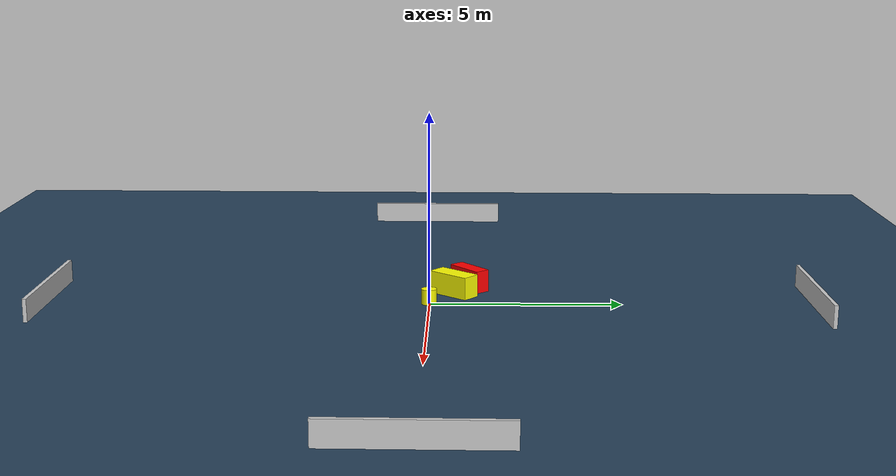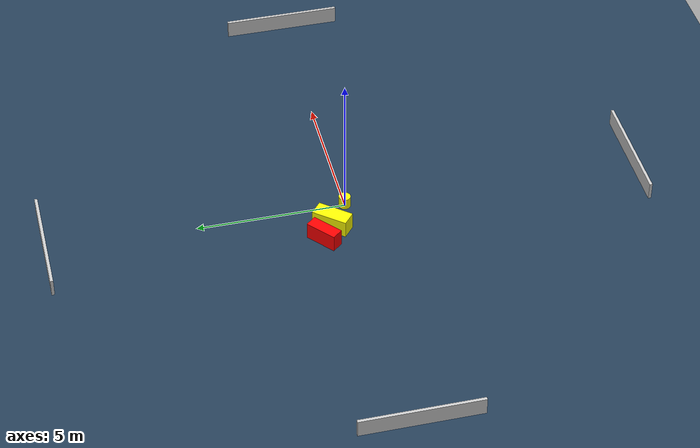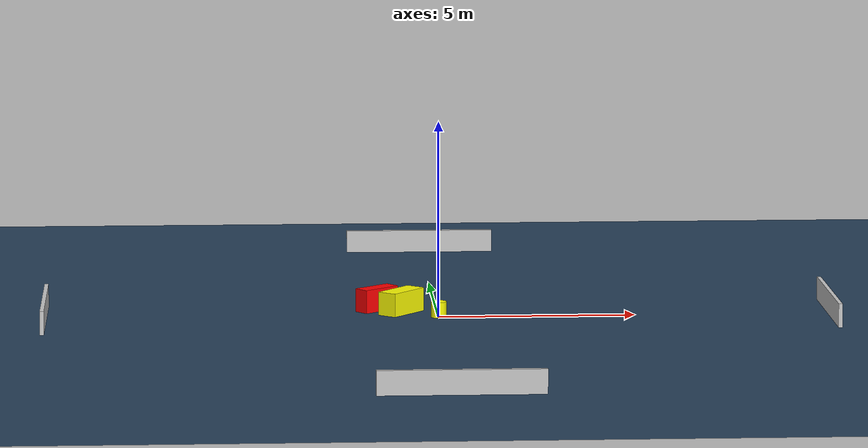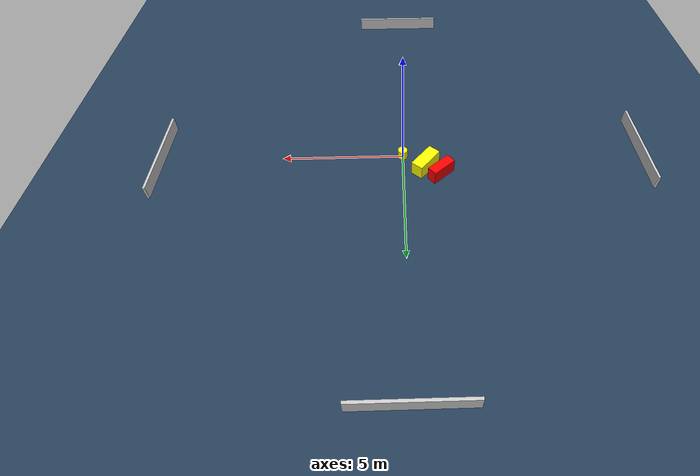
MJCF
<?xml version="1.0" ?>
<mujoco model="generated_environment">
  <option timestep="0.01" integrator="RK4" cone="elliptic"/>
  <default>
    <geom density="1"/>
  </default>
  <asset>
    <texture builtin="gradient" height="3072" name="skybox" rgb1="0.3 0.5 0.7" rgb2="0 0 0" type="skybox" width="512"/>
    <texture builtin="checker" height="300" name="groundplane" rgb1="0.2 0.3 0.4" rgb2="0.1 0.2 0.3" type="2d" width="300"/>
    <material name="groundplane" reflectance="0.2" texrepeat="5 5" texture="groundplane"/>
  </asset>
  <worldbody>
    <light dir="0 0 -1" directional="true" pos="0 0 1.5"/>
    <geom condim="3" friction="0.5 0.005 0.001" material="groundplane" name="floor" pos="0 0 0" size="0 0 0.05" type="plane"/>
    <body name="walls">
      <geom name="wall_1" condim="4" pos="-10.0 0.0 0.3" rgba="0.800000011920929 0.800000011920929 0.800000011920929 1.0" size="0.05 2.0 0.3" type="box"/>
      <geom name="wall_2" condim="4" pos="10.0 0.0 0.3" rgba="0.800000011920929 0.800000011920929 0.800000011920929 1.0" size="0.05 2.0 0.3" type="box"/>
      <geom name="wall_3" condim="4" pos="0.0 -10.0 0.3" rgba="0.800000011920929 0.800000011920929 0.800000011920929 1.0" size="2.0 0.05 0.3" type="box"/>
      <geom name="wall_4" condim="4" pos="0.0 10.0 0.3" rgba="0.800000011920929 0.800000011920929 0.800000011920929 1.0" size="2.0 0.05 0.3" type="box"/>
    </body>
    <body name="robot">
      <joint name="joint_x" type="slide" pos="0 0 0" axis="1 0 0"/>
      <joint name="joint_y" type="slide" pos="0 0 0" axis="0 1 0"/>
      <geom name="robot" type="cylinder" pos="0.0 0.0 0.2" size="0.2 0.2 0.0" mass="5.0" friction="1.0 0.005 0.0001" condim="4" rgba="1.0 1.0 0.0 1.0"/>
    </body>
    <body name="obstacle_1_movable">
      <geom name="obstacle_1_movable" condim="4" pos="-0.922317950008991 0.6312268330848764 0.3" euler="0 0 50.02529640306216" friction="0.0 0.005 0.001" rgba="1.0 1.0 0.0 1.0" size="0.6101022663185989 0.26117664590758033 0.3" type="box" mass="0.1"/>
      <joint type="free"/>
    </body>
    <body name="obstacle_2_static">
      <geom name="obstacle_2_static" condim="4" pos="-1.5318358379089447 1.0470980965981076 0.3" euler="0 0 40.268712188468534" friction="0.0 0.005 0.001" rgba="1.0 0.0 0.0 1.0" size="0.5456721626624692 0.20734466044985164 0.3" type="box"/>
    </body>
  </worldbody>
  <actuator>
    <motor name="actuator_x" joint="joint_x" gear="1" ctrlrange="-1 1"/>
    <motor name="actuator_y" joint="joint_y" gear="1" ctrlrange="-1 1"/>
  </actuator>
</mujoco>
